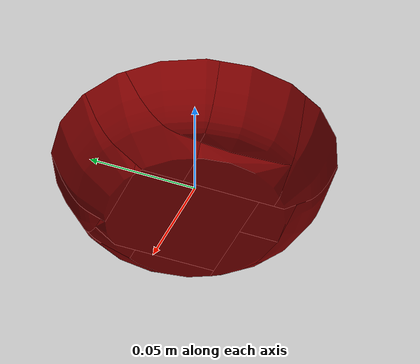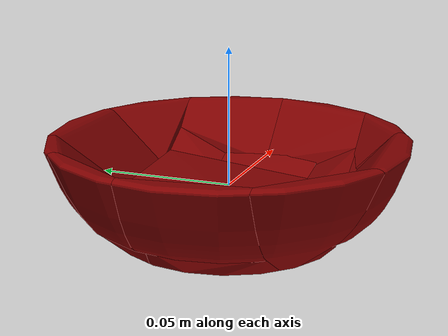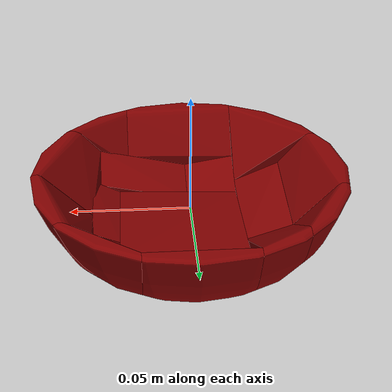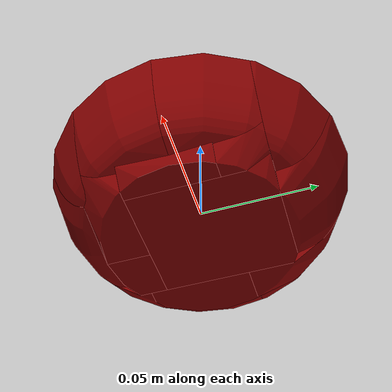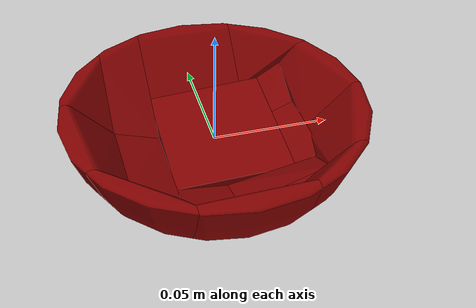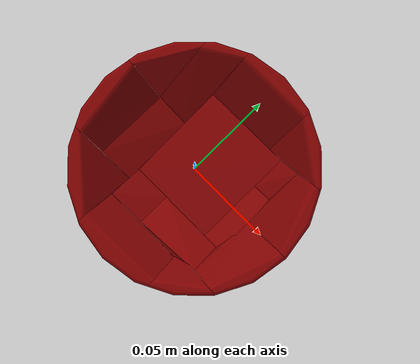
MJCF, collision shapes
<mujoco model="bowl_2">
  <asset>
    <mesh file="visual/model_normalized_0.obj" name="model_normalized_0_vis" scale="0.12999999999999995 0.12999999999999995 0.12999999999999995" refquat="1.0 0.0 0.0 0.0"/>
    <texture type="2d" name="image0" file="visual/image0.png"/>
    <material name="StingrayPBS2" texture="image0" specular="0.5" shininess="0.25"/>
    <mesh file="collision/collision_mesh_collision_0.obj" name="bowl_collision_mesh_0" scale="0.12999999999999995 0.12999999999999995 0.12999999999999995" refquat="1.0 0.0 0.0 0.0"/>
    <mesh file="collision/collision_mesh_collision_1.obj" name="bowl_collision_mesh_1" scale="0.12999999999999995 0.12999999999999995 0.12999999999999995" refquat="1.0 0.0 0.0 0.0"/>
    <mesh file="collision/collision_mesh_collision_2.obj" name="bowl_collision_mesh_2" scale="0.12999999999999995 0.12999999999999995 0.12999999999999995" refquat="1.0 0.0 0.0 0.0"/>
    <mesh file="collision/collision_mesh_collision_3.obj" name="bowl_collision_mesh_3" scale="0.12999999999999995 0.12999999999999995 0.12999999999999995" refquat="1.0 0.0 0.0 0.0"/>
    <mesh file="collision/collision_mesh_collision_4.obj" name="bowl_collision_mesh_4" scale="0.12999999999999995 0.12999999999999995 0.12999999999999995" refquat="1.0 0.0 0.0 0.0"/>
    <mesh file="collision/collision_mesh_collision_5.obj" name="bowl_collision_mesh_5" scale="0.12999999999999995 0.12999999999999995 0.12999999999999995" refquat="1.0 0.0 0.0 0.0"/>
    <mesh file="collision/collision_mesh_collision_6.obj" name="bowl_collision_mesh_6" scale="0.12999999999999995 0.12999999999999995 0.12999999999999995" refquat="1.0 0.0 0.0 0.0"/>
    <mesh file="collision/collision_mesh_collision_7.obj" name="bowl_collision_mesh_7" scale="0.12999999999999995 0.12999999999999995 0.12999999999999995" refquat="1.0 0.0 0.0 0.0"/>
    <mesh file="collision/collision_mesh_collision_8.obj" name="bowl_collision_mesh_8" scale="0.12999999999999995 0.12999999999999995 0.12999999999999995" refquat="1.0 0.0 0.0 0.0"/>
    <mesh file="collision/collision_mesh_collision_9.obj" name="bowl_collision_mesh_9" scale="0.12999999999999995 0.12999999999999995 0.12999999999999995" refquat="1.0 0.0 0.0 0.0"/>
    <mesh file="collision/collision_mesh_collision_10.obj" name="bowl_collision_mesh_10" scale="0.12999999999999995 0.12999999999999995 0.12999999999999995" refquat="1.0 0.0 0.0 0.0"/>
    <mesh file="collision/collision_mesh_collision_11.obj" name="bowl_collision_mesh_11" scale="0.12999999999999995 0.12999999999999995 0.12999999999999995" refquat="1.0 0.0 0.0 0.0"/>
    <mesh file="collision/collision_mesh_collision_12.obj" name="bowl_collision_mesh_12" scale="0.12999999999999995 0.12999999999999995 0.12999999999999995" refquat="1.0 0.0 0.0 0.0"/>
    <mesh file="collision/collision_mesh_collision_13.obj" name="bowl_collision_mesh_13" scale="0.12999999999999995 0.12999999999999995 0.12999999999999995" refquat="1.0 0.0 0.0 0.0"/>
    <mesh file="collision/collision_mesh_collision_14.obj" name="bowl_collision_mesh_14" scale="0.12999999999999995 0.12999999999999995 0.12999999999999995" refquat="1.0 0.0 0.0 0.0"/>
    <mesh file="collision/collision_mesh_collision_15.obj" name="bowl_collision_mesh_15" scale="0.12999999999999995 0.12999999999999995 0.12999999999999995" refquat="1.0 0.0 0.0 0.0"/>
  </asset>
  <default>
    <default class="region">
      <geom group="1" conaffinity="0" contype="0" rgba="0 1 0 0"/>
    </default>
    <default class="collision">
      <geom group="0" rgba="0.5 0 0 0.5" density="1000.0"/>
    </default>
  </default>
  <worldbody>
    <body>
      <body name="object">
        <geom solimp="0.998 0.998 0.001" solref="0.001 1" density="100" friction="0.95 0.3 0.1" type="mesh" mesh="model_normalized_0_vis" conaffinity="0" contype="0" group="1" material="StingrayPBS2"/>
        <geom class="region" name="reg_bbox" type="box" pos="0.0 5.369000000024491e-07 0.0" size="0.06499996879999997 0.06499816959999997 0.018404414599999995"/>
        <geom mesh="bowl_collision_mesh_0" type="mesh" class="collision"/>
        <geom mesh="bowl_collision_mesh_1" type="mesh" class="collision"/>
        <geom mesh="bowl_collision_mesh_2" type="mesh" class="collision"/>
        <geom mesh="bowl_collision_mesh_3" type="mesh" class="collision"/>
        <geom mesh="bowl_collision_mesh_4" type="mesh" class="collision"/>
        <geom mesh="bowl_collision_mesh_5" type="mesh" class="collision"/>
        <geom mesh="bowl_collision_mesh_6" type="mesh" class="collision"/>
        <geom mesh="bowl_collision_mesh_7" type="mesh" class="collision"/>
        <geom mesh="bowl_collision_mesh_8" type="mesh" class="collision"/>
        <geom mesh="bowl_collision_mesh_9" type="mesh" class="collision"/>
        <geom mesh="bowl_collision_mesh_10" type="mesh" class="collision"/>
        <geom mesh="bowl_collision_mesh_11" type="mesh" class="collision"/>
        <geom mesh="bowl_collision_mesh_12" type="mesh" class="collision"/>
        <geom mesh="bowl_collision_mesh_13" type="mesh" class="collision"/>
        <geom mesh="bowl_collision_mesh_14" type="mesh" class="collision"/>
        <geom mesh="bowl_collision_mesh_15" type="mesh" class="collision"/>
        <geom rgba="0 0 0 0 " size="0.058 0.058 0.025" pos="0 0 0.018" type="ellipsoid" name="reg_int" class="region"/>
      </body>
    </body>
  </worldbody>
</mujoco>
